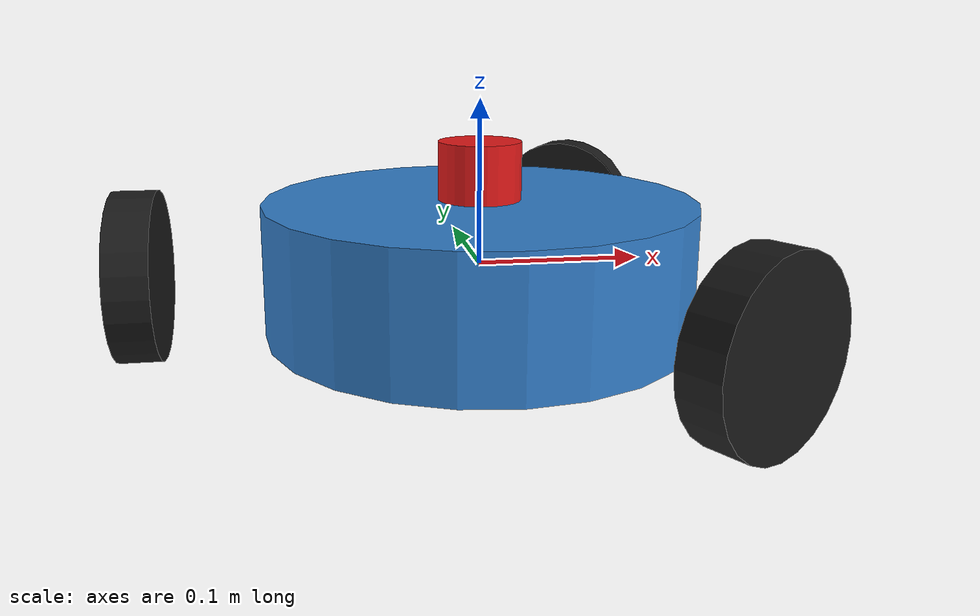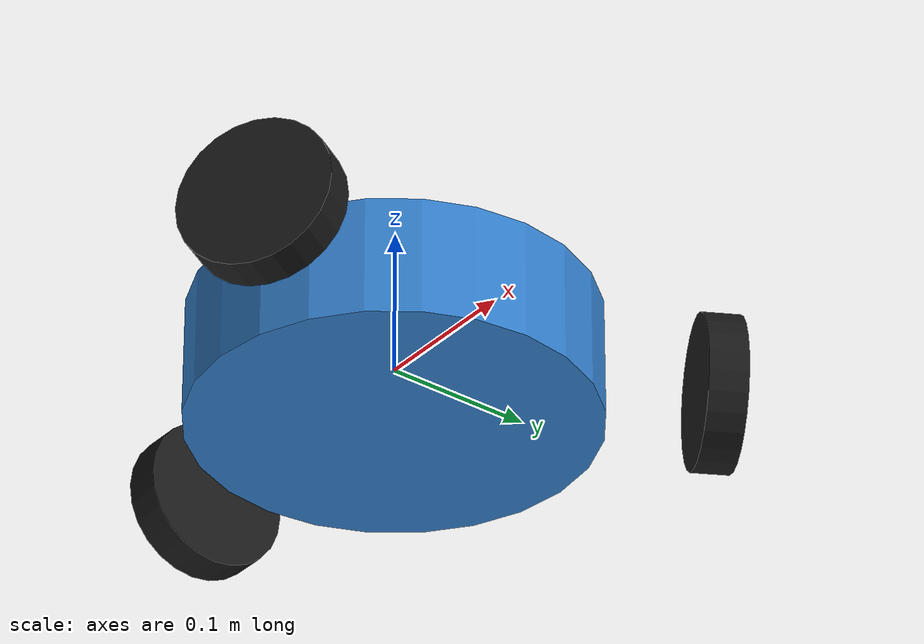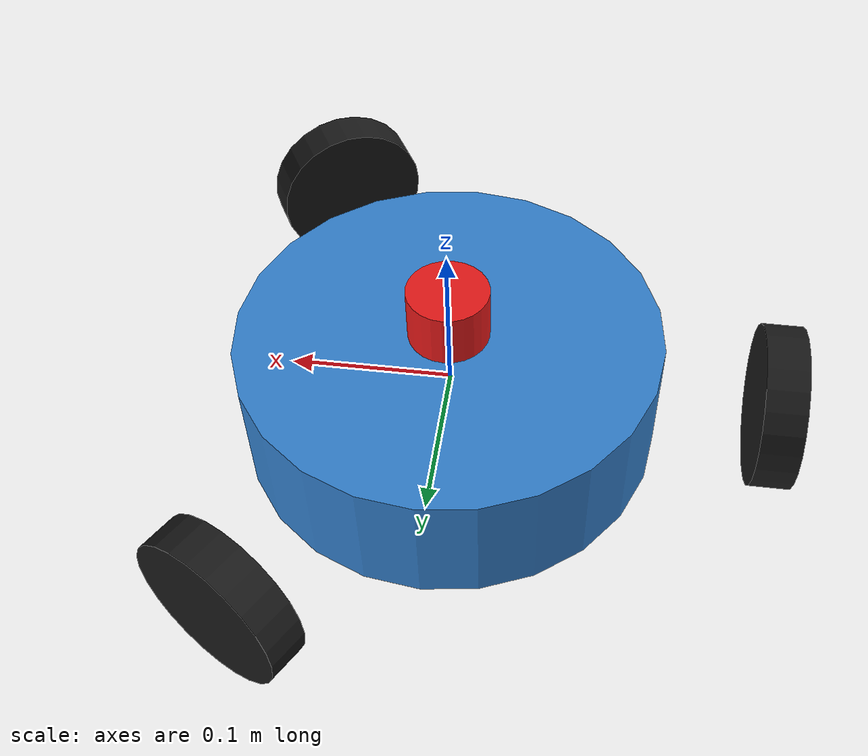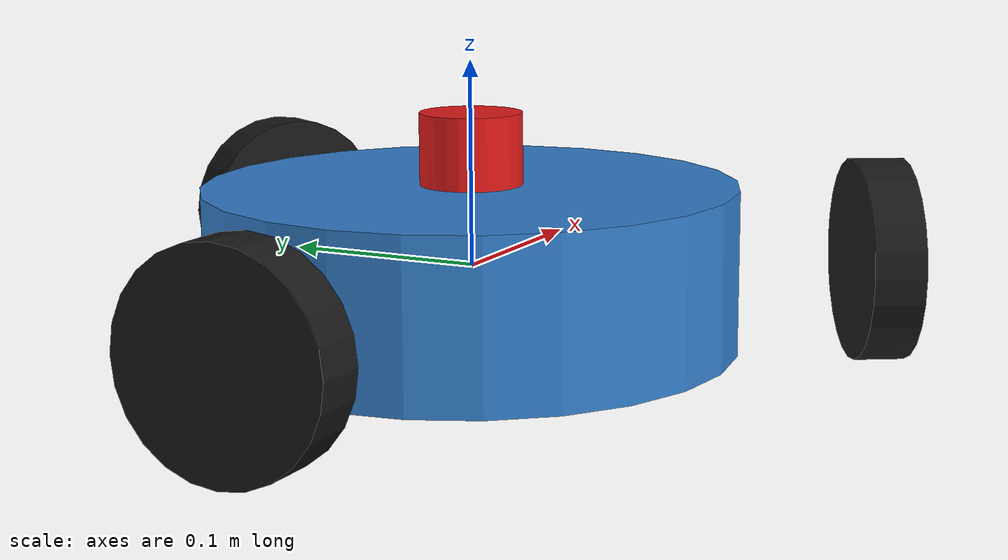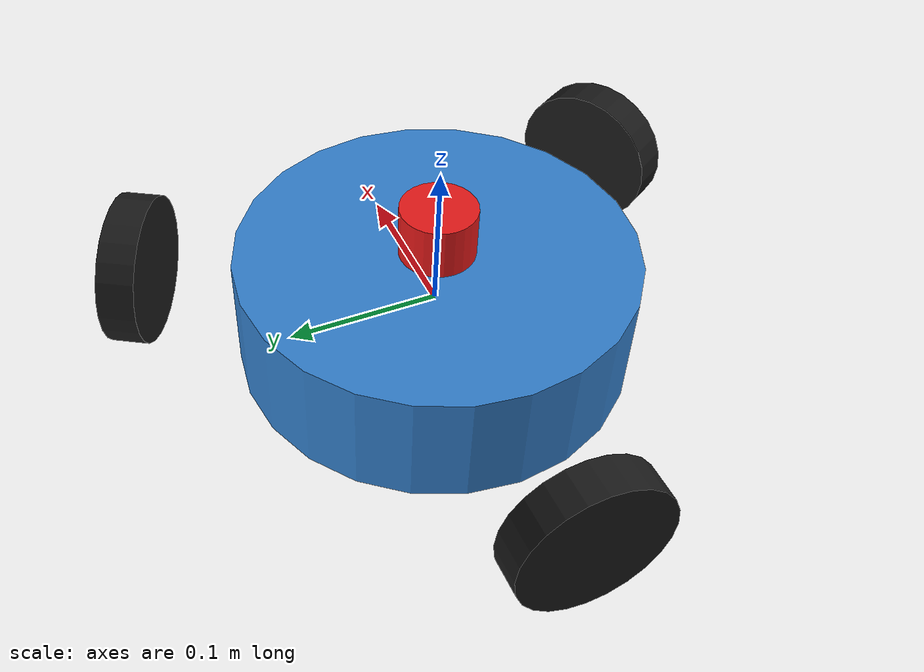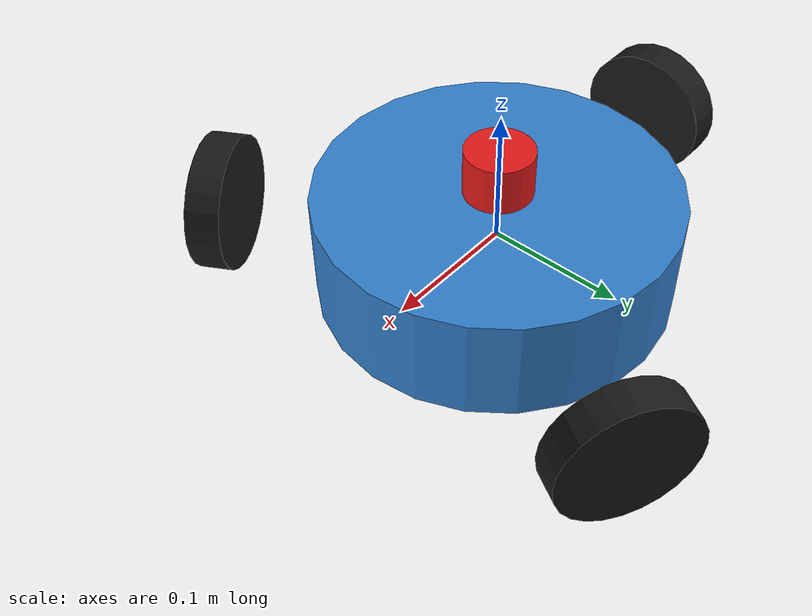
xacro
<?xml version="1.0"?>
<robot name="omni_robot" xmlns:xacro="http://www.ros.org/wiki/xacro">

  <!-- ─── Constants ─────────────────────────────────────────────────── -->
  <xacro:property name="r_wheel" value="0.05"/>   <!-- wheel radius  [m] -->
  <xacro:property name="w_wheel" value="0.025"/>  <!-- wheel width   [m] -->
  <xacro:property name="L"       value="0.20"/>   <!-- robot radius  [m] -->
  <xacro:property name="r_base"  value="0.13"/>   <!-- body radius   [m]  < L → no overlap -->
  <xacro:property name="h_base"  value="0.08"/>   <!-- body height   [m] -->
  <xacro:property name="m_base"  value="2.0"/>    <!-- body mass     [kg] -->
  <xacro:property name="m_wheel" value="0.25"/>   <!-- wheel mass    [kg] -->

  <!-- ─── Inertia macro ─────────────────────────────────────────────── -->
  <xacro:macro name="cylinder_inertia" params="m r h">
    <inertial>
      <mass value="${m}"/>
      <inertia
        ixx="${(1.0/12.0)*m*(3*r*r + h*h)}"
        iyy="${(1.0/12.0)*m*(3*r*r + h*h)}"
        izz="${(1.0/2.0)*m*r*r}"
        ixy="0" ixz="0" iyz="0"/>
    </inertial>
  </xacro:macro>

  <!-- ─── Wheel macro ───────────────────────────────────────────────── -->
  <xacro:macro name="omni_wheel" params="name angle_deg">
    <xacro:property name="angle_rad" value="${angle_deg * 3.14159265358979 / 180.0}"/>
    <xacro:property name="wx" value="${L * cos(angle_rad)}"/>
    <xacro:property name="wy" value="${L * sin(angle_rad)}"/>

    <link name="${name}">
      <xacro:cylinder_inertia m="${m_wheel}" r="${r_wheel}" h="${w_wheel}"/>
      <visual>
        <geometry><cylinder radius="${r_wheel}" length="${w_wheel}"/></geometry>
        <material name="wheel_mat"><color rgba="0.1 0.1 0.1 1.0"/></material>
      </visual>
      <collision>
        <geometry><cylinder radius="${r_wheel}" length="${w_wheel}"/></geometry>
        <surface>
          <friction>
            <ode>
              <mu>1.5</mu>      <!-- rolling (tangential) friction -->
              <mu2>0.01</mu2>   <!-- lateral friction ≈ 0 (omni roller) -->
              <fdir1>0 0 0</fdir1>
              <slip1>0.0</slip1>
              <slip2>1.0</slip2>
            </ode>
          </friction>
        </surface>
      </collision>
    </link>

    <joint name="${name}_joint" type="continuous">
      <parent link="base_link"/>
      <child  link="${name}"/>
      <origin xyz="${wx} ${wy} 0" rpy="${pi/2} 0 ${angle_rad + pi/2}"/>
      <axis xyz="0 0 1"/>
      <dynamics damping="0.005" friction="0.005"/>
    </joint>
  </xacro:macro>

  <!-- ─── Dummy root link (fixes KDL root-inertia warning) ─────────── -->
  <link name="base_footprint"/>
  <joint name="base_footprint_joint" type="fixed">
    <parent link="base_footprint"/>
    <child  link="base_link"/>
    <origin xyz="0 0 0" rpy="0 0 0"/>
  </joint>

  <!-- ─── Body ──────────────────────────────────────────────────────── -->
  <link name="base_link">
    <xacro:cylinder_inertia m="${m_base}" r="${r_base}" h="${h_base}"/>
    <visual>
      <geometry><cylinder radius="${r_base}" length="${h_base}"/></geometry>
      <material name="body_mat"><color rgba="0.2 0.5 0.8 1.0"/></material>
    </visual>
    <collision>
      <geometry><cylinder radius="${r_base}" length="${h_base}"/></geometry>
    </collision>
  </link>

  <!-- ─── Wheels ────────────────────────────────────────────────────── -->
  <xacro:omni_wheel name="wheel_1" angle_deg="-60"/>
  <xacro:omni_wheel name="wheel_2" angle_deg="60"/>
  <xacro:omni_wheel name="wheel_3" angle_deg="180"/>

  <!-- ─── LiDAR ─────────────────────────────────────────────────────── -->
  <link name="lidar_link">
    <inertial>
      <mass value="0.05"/>
      <inertia ixx="0.00001" iyy="0.00001" izz="0.00001" ixy="0" ixz="0" iyz="0"/>
    </inertial>
    <visual>
      <geometry><cylinder radius="0.025" length="0.035"/></geometry>
      <material name="lidar_mat"><color rgba="0.9 0.1 0.1 1.0"/></material>
    </visual>
    <collision>
      <geometry><cylinder radius="0.025" length="0.035"/></geometry>
    </collision>
  </link>
  <joint name="lidar_joint" type="fixed">
    <parent link="base_link"/>
    <child  link="lidar_link"/>
    <origin xyz="0 0 ${h_base/2.0 + 0.0175}" rpy="0 0 0"/>
  </joint>

  <gazebo>
    <plugin filename="gz-sim-velocity-control-system"
            name="gz::sim::systems::VelocityControl">
      <topic>/gz_cmd_vel</topic>
    </plugin>
  </gazebo>

  <!-- 2. ODOMETRY PUBLISHER
       Reads actual model pose from physics → publishes gz.msgs.Odometry.
       Bridged to ROS2 /odom by parameter_bridge. -->
  <gazebo>
    <plugin filename="gz-sim-odometry-publisher-system"
            name="gz::sim::systems::OdometryPublisher">
      <odom_publish_frequency>50</odom_publish_frequency>
      <robot_base_frame>base_link</robot_base_frame>
      <odom_frame>odom</odom_frame>
      <odom_topic>odometry</odom_topic>
    </plugin>
  </gazebo>

  <gazebo>
    <plugin filename="gz-sim-joint-controller-system"
            name="gz::sim::systems::JointController">
      <joint_name>wheel_1_joint</joint_name>
      <topic>/gz_wheel_1_vel</topic>
      <use_force_pid>false</use_force_pid>
    </plugin>
  </gazebo>
  <gazebo>
    <plugin filename="gz-sim-joint-controller-system"
            name="gz::sim::systems::JointController">
      <joint_name>wheel_2_joint</joint_name>
      <topic>/gz_wheel_2_vel</topic>
      <use_force_pid>false</use_force_pid>
    </plugin>
  </gazebo>
  <gazebo>
    <plugin filename="gz-sim-joint-controller-system"
            name="gz::sim::systems::JointController">
      <joint_name>wheel_3_joint</joint_name>
      <topic>/gz_wheel_3_vel</topic>
      <use_force_pid>false</use_force_pid>
    </plugin>
  </gazebo>

  <!-- 4. 2-D LiDAR SENSOR -->
  <gazebo reference="lidar_link">
    <sensor name="lidar_sensor" type="gpu_lidar">
      <update_rate>10</update_rate>
      <topic>/scan_gz</topic>
      <lidar>
        <scan>
          <horizontal>
            <samples>360</samples>
            <resolution>1</resolution>
            <min_angle>-3.14159265</min_angle>
            <max_angle> 3.14159265</max_angle>
          </horizontal>
        </scan>
        <range>
          <min>0.28</min>
          <max>8.0</max>
          <resolution>0.01</resolution>
        </range>
        <noise>
          <type>gaussian</type>
          <mean>0</mean>
          <stddev>0.01</stddev>
        </noise>
      </lidar>
      <visualize>true</visualize>
    </sensor>
  </gazebo>

</robot>
